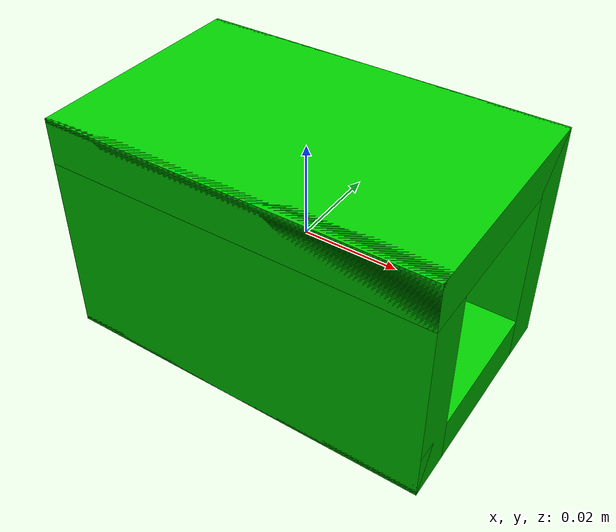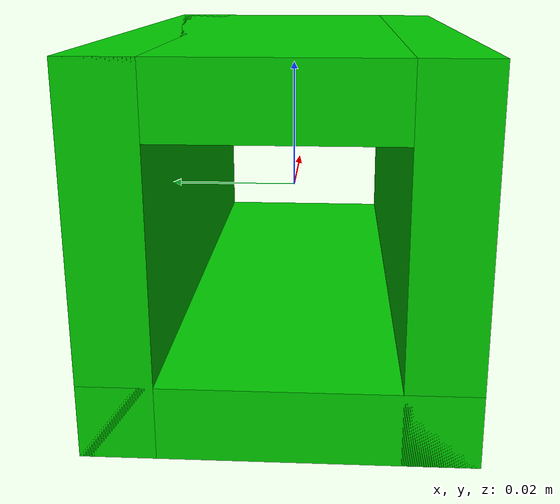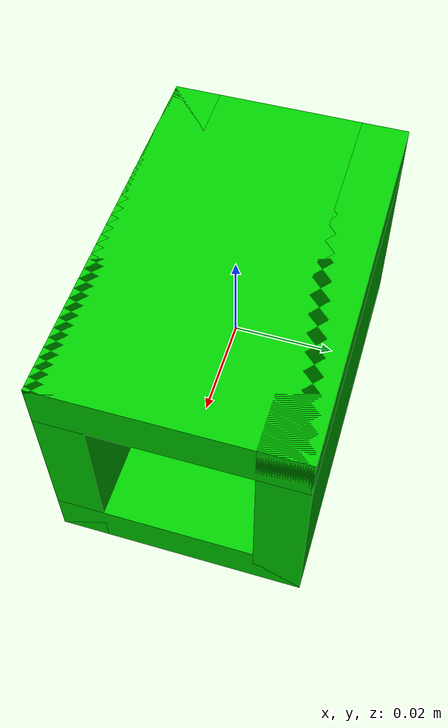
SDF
<?xml version="1.0" ?>
<sdf version="1.6">
  <model name="green_hollow">
    <plugin filename="gz-sim-pose-publisher-system" name="gz::sim::systems::PosePublisher">
      <publish_link_pose>false</publish_link_pose>
      <use_pose_vector_msg>false</use_pose_vector_msg>
      <static_publisher>true</static_publisher>
      <static_update_frequency>30</static_update_frequency>
    </plugin>
    <link name="link">
      <inertial>
        <mass>0.2</mass>
        <inertia>
          <ixx>0.0001</ixx>
          <iyy>0.0001</iyy>
          <izz>0.0001</izz>
        </inertia>
      </inertial>

      <!-- Bottom wall -->
      <collision name="bottom">
        <pose>0 0 -0.020125 0 0 0</pose>
        <geometry>
          <box>
            <size>0.08 0.05 0.00975</size>
          </box>
        </geometry>
      </collision>
      <visual name="bottom_visual">
        <pose>0 0 -0.020125 0 0 0</pose>
        <geometry>
          <box>
            <size>0.08 0.05 0.00975</size>
          </box>
        </geometry>
        <material>
          <ambient>0 0.6 0 1</ambient>
          <diffuse>0 0.8 0 1</diffuse>
        </material>
      </visual>

      <!-- Left wall -->
      <collision name="left_wall">
        <pose>0 0.020125 0 0 0 0</pose>
        <geometry>
          <box>
            <size>0.08 0.00975 0.05</size>
          </box>
        </geometry>
      </collision>
      <visual name="left_wall_visual">
        <pose>0 0.020125 0 0 0 0</pose>
        <geometry>
          <box>
            <size>0.08 0.00975 0.05</size>
          </box>
        </geometry>
        <material>
          <ambient>0 0.6 0 1</ambient>
          <diffuse>0 0.8 0 1</diffuse>
        </material>
      </visual>

      <!-- Right wall -->
      <collision name="right_wall">
        <pose>0 -0.020125 0 0 0 0</pose>
        <geometry>
          <box>
            <size>0.08 0.00975 0.05</size>
          </box>
        </geometry>
      </collision>
      <visual name="right_wall_visual">
        <pose>0 -0.020125 0 0 0 0</pose>
        <geometry>
          <box>
            <size>0.08 0.00975 0.05</size>
          </box>
        </geometry>
        <material>
          <ambient>0 0.6 0 1</ambient>
          <diffuse>0 0.8 0 1</diffuse>
        </material>
      </visual>

      <!-- Top wall -->
      <collision name="top_wall">
        <pose>0 0 0.020125 0 0 0</pose>
        <geometry>
          <box>
            <size>0.08 0.05 0.00975</size>
          </box>
        </geometry>
      </collision>
      <visual name="top_wall_visual">
        <pose>0 0 0.020125 0 0 0</pose>
        <geometry>
          <box>
            <size>0.08 0.05 0.00975</size>
          </box>
        </geometry>
        <material>
          <ambient>0 0.6 0 1</ambient>
          <diffuse>0 0.8 0 1</diffuse>
        </material>
      </visual>
    </link>
  </model>
</sdf>
